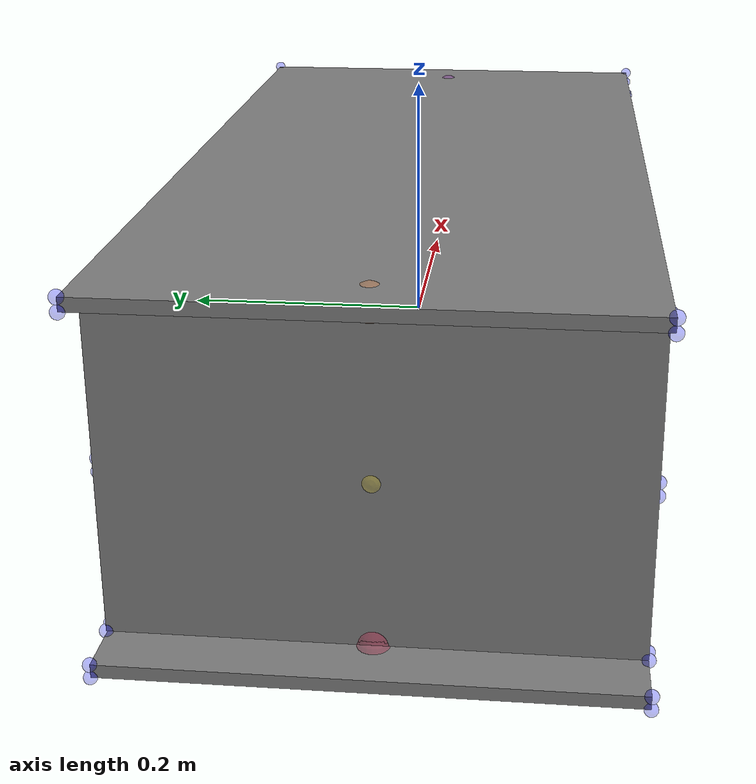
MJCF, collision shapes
<mujoco model="tvunit_0406">
  <custom>
    <numeric data="-0.384165 0.272905 0.00497 0.999971 0.0 0.0 -0.007619" name="0_part0_initpos" />
    <numeric data="-0.33085 -0.206251 0.00497 0.99999 -0.0 0.0 -0.004369" name="1_part1_initpos" />
    <numeric data="0.554654 -0.223251 0.005073 0.707103 -0.002217 0.707103 0.002217" name="2_part2_initpos" />
    <numeric data="0.21867 -0.208788 0.00497 0.707105 0.001443 0.707105 -0.001443" name="3_part3_initpos" />
    <numeric data="0.47408 0.258903 0.00497 -0.0 -0.999894 0.014558 -0.0" name="4_part4_initpos" />
  </custom>
  <asset>
    <mesh file="tvunit_0406/botplane.stl" name="0_part0" scale="0.001 0.001 0.001" />
    <mesh file="tvunit_0406/midplane.stl" name="1_part1" scale="0.001 0.001 0.001" />
    <mesh file="tvunit_0406/sideplane1.stl" name="2_part2" scale="0.001 0.001 0.001" />
    <mesh file="tvunit_0406/sideplane2.stl" name="3_part3" scale="0.001 0.001 0.001" />
    <mesh file="tvunit_0406/topplane.stl" name="4_part4" scale="0.001 0.001 0.001" />
    <texture file="../textures/light-wood.png" name="tex-light-wood" type="2d" />
    <material name="pencil-wood" reflectance="0.5" texrepeat="20 20" texture="tex-light-wood" texuniform="true" />
  </asset>
  <equality>
    <weld active="false" body1="0_part0" body2="2_part2" solimp="1 1 0.5" solref="0.01 0.3" />
    <weld active="false" body1="0_part0" body2="3_part3" solimp="1 1 0.5" solref="0.01 0.3" />
    <weld active="false" body1="1_part1" body2="2_part2" solimp="1 1 0.5" solref="0.01 0.3" />
    <weld active="false" body1="1_part1" body2="3_part3" solimp="1 1 0.5" solref="0.01 0.3" />
    <weld active="false" body1="4_part4" body2="2_part2" solimp="1 1 0.5" solref="0.01 0.3" />
    <weld active="false" body1="4_part4" body2="3_part3" solimp="1 1 0.5" solref="0.01 0.3" />
  </equality>
  <worldbody>
    <body name="0_part0" pos="0.0 0.0 -0.132">
      <geom conaffinity="0" contype="0" density="0" material="pencil-wood" mesh="0_part0" name="0_part0_geom" pos="0 0 0" rgba="0.82 0.71 0.55 1" solref="0.001 1" type="mesh" />
      <geom density="100" name="noviz_collision_0_part0_geom" pos="0 0 0" size="0.38 0.19 0.005" solref="0.001 1" type="box" />
      <site name="0_part0_top_site" pos="0.0 0.0 0.005" rgba="0 0 1 0" size="0.005" />
      <site name="0_part0_bottom_site" pos="0.0 0.0 -0.005" rgba="0 0 1 0" size="0.005" />
      <site name="0_part0_horizontal_radius_site" pos="0.0 0.0 0.0" rgba="0 0 1 0" size="0.05" />
      <site name="0_part0-2_part2,0,conn_site" pos="-0.3375 0.0 0.005" rgba="0.9019 0.0980 0.2941 0.3" size="0.012" />
      <site name="0_part0-3_part3,0,conn_site" pos="0.3375 0.0 0.005" rgba="0.2352 0.7058 0.2941 0.3" size="0.012" />
      <site name="0_part0_corner_site1" pos="-0.38 -0.19 -0.005" rgba="0 0 1 0.3" size="0.005" />
      <site name="0_part0_corner_site2" pos="-0.38 0.19 -0.005" rgba="0 0 1 0.3" size="0.005" />
      <site name="0_part0_corner_site3" pos="-0.38 -0.19 0.005" rgba="0 0 1 0.3" size="0.005" />
      <site name="0_part0_corner_site4" pos="-0.38 0.19 0.005" rgba="0 0 1 0.3" size="0.005" />
      <site name="0_part0_corner_site5" pos="0.38 -0.19 -0.005" rgba="0 0 1 0.3" size="0.005" />
      <site name="0_part0_corner_site6" pos="0.38 0.19 -0.005" rgba="0 0 1 0.3" size="0.005" />
      <site name="0_part0_corner_site7" pos="0.38 -0.19 0.005" rgba="0 0 1 0.3" size="0.005" />
      <site name="0_part0_corner_site8" pos="0.38 0.19 0.005" rgba="0 0 1 0.3" size="0.005" />
    </body>
    <body name="1_part1" pos="0.0 0.0 0.0">
      <geom conaffinity="0" contype="0" density="0" material="pencil-wood" mesh="1_part1" name="1_part1_geom" pos="0 0 0" rgba="0.82 0.71 0.55 1" solref="0.001 1" type="mesh" />
      <geom density="100" name="noviz_collision_1_part1_geom" pos="0 0 0" size="0.33 0.19 0.005" solref="0.001 1" type="box" />
      <site name="1_part1_top_site" pos="0.0 0.0 0.005" rgba="0 0 1 0" size="0.005" />
      <site name="1_part1_bottom_site" pos="0.0 0.0 -0.005" rgba="0 0 1 0" size="0.005" />
      <site name="1_part1_horizontal_radius_site" pos="0.0 0.0 0.0" rgba="0 0 1 0" size="0.05" />
      <site name="1_part1-2_part2,0,180,conn_site" pos="-0.331 0.0 0.0" quat="0.707 0 -0.707 0" rgba="1.0 0.8823 0.0980 0.3" size="0.012" />
      <site name="1_part1-3_part3,0,180,conn_site" pos="0.331 0.0 0.0" quat="0.707 0 -0.707 0" rgba="0.2627 0.3882 0.8470 0.3" size="0.012" />
      <site name="1_part1_corner_site1" pos="-0.33 -0.19 -0.005" rgba="0 0 1 0.3" size="0.005" />
      <site name="1_part1_corner_site2" pos="-0.33 0.19 -0.005" rgba="0 0 1 0.3" size="0.005" />
      <site name="1_part1_corner_site3" pos="-0.33 -0.19 0.005" rgba="0 0 1 0.3" size="0.005" />
      <site name="1_part1_corner_site4" pos="-0.33 0.19 0.005" rgba="0 0 1 0.3" size="0.005" />
      <site name="1_part1_corner_site5" pos="0.33 -0.19 -0.005" rgba="0 0 1 0.3" size="0.005" />
      <site name="1_part1_corner_site6" pos="0.33 0.19 -0.005" rgba="0 0 1 0.3" size="0.005" />
      <site name="1_part1_corner_site7" pos="0.33 -0.19 0.005" rgba="0 0 1 0.3" size="0.005" />
      <site name="1_part1_corner_site8" pos="0.33 0.19 0.005" rgba="0 0 1 0.3" size="0.005" />
    </body>
    <body name="2_part2" pos="-0.336 0.0 0.0">
      <geom conaffinity="0" contype="0" density="0" material="pencil-wood" mesh="2_part2" name="2_part2_geom" pos="0 0 0" rgba="0.82 0.71 0.55 1" solref="0.001 1" type="mesh" />
      <geom density="100" name="noviz_collision_2_part2_geom" pos="0 0 0" size="0.005  0.19  0.125" solref="0.001 1" type="box" />
      <site name="2_part2_top_site" pos="0.0 0.0 0.13" rgba="0 0 1 0" size="0.005" />
      <site name="2_part2_bottom_site" pos="0.0 0.0 -0.13" rgba="0 0 1 0" size="0.005" />
      <site name="2_part2_horizontal_radius_site" pos="0.0 0.0 0.0" rgba="0 0 1 0" size="0.05" />
      <site name="2_part2-4_part4,0,conn_site" pos="0.0 0.0 0.125" rgba="0.9607 0.5098 0.1921 0.3" size="0.012" />
      <site name="2_part2-1_part1,0,180,conn_site" pos="0.006 0.0 0.0" quat="0.707 0 -0.707 0" rgba="1.0 0.8823 0.0980 0.3" size="0.012" />
      <site name="2_part2-0_part0,0,conn_site" pos="0.0 0.0 -0.125" rgba="0.9019 0.0980 0.2941 0.3" size="0.012" />
      <site name="2_part2_corner_site1" pos="0.005 0.19 -0.125" rgba="0 0 1 0.3" size="0.005" />
      <site name="2_part2_corner_site2" pos="0.005 -0.19 -0.125" rgba="0 0 1 0.3" size="0.005" />
      <site name="2_part2_corner_site3" pos="0.005 0.19 0.125" rgba="0 0 1 0.3" size="0.005" />
      <site name="2_part2_corner_site4" pos="0.005 -0.19 0.125" rgba="0 0 1 0.3" size="0.005" />
      <site name="2_part2_corner_site5" pos="-0.005 0.19 -0.125" rgba="0 0 1 0.3" size="0.005" />
      <site name="2_part2_corner_site6" pos="-0.005 -0.19 -0.125" rgba="0 0 1 0.3" size="0.005" />
      <site name="2_part2_corner_site7" pos="-0.005 0.19 0.125" rgba="0 0 1 0.3" size="0.005" />
      <site name="2_part2_corner_site8" pos="-0.005 -0.19 0.125" rgba="0 0 1 0.3" size="0.005" />
    </body>
    <body name="3_part3" pos="0.3372 0.0 0.0">
      <geom conaffinity="0" contype="0" density="0" material="pencil-wood" mesh="3_part3" name="3_part3_geom" pos="0 0 0" rgba="0.82 0.71 0.55 1" solref="0.001 1" type="mesh" />
      <geom density="100" name="noviz_collision_3_part3_geom" pos="0 0 0" size="0.005  0.19  0.125" solref="0.001 1" type="box" />
      <site name="3_part3_top_site" pos="0.0 0.0 0.13" rgba="0 0 1 0" size="0.005" />
      <site name="3_part3_bottom_site" pos="0.0 0.0 -0.13" rgba="0 0 1 0" size="0.005" />
      <site name="3_part3_horizontal_radius_site" pos="0.0 0.0 0.0" rgba="0 0 1 0" size="0.05" />
      <site name="3_part3-4_part4,0,conn_site" pos="0.0 0.0 0.125" rgba="0.5686 0.1176 0.7058 0.3" size="0.012" />
      <site name="3_part3-1_part1,0,180,conn_site" pos="-0.006 0.0 0.0" quat="0.707 0 -0.707 0" rgba="0.2627 0.3882 0.8470 0.3" size="0.012" />
      <site name="3_part3-0_part0,0,conn_site" pos="0.0 0.0 -0.125" rgba="0.2352 0.7058 0.2941 0.3" size="0.012" />
      <site name="3_part3_corner_site1" pos="0.005 0.19 -0.125" rgba="0 0 1 0.3" size="0.005" />
      <site name="3_part3_corner_site2" pos="0.005 -0.19 -0.125" rgba="0 0 1 0.3" size="0.005" />
      <site name="3_part3_corner_site3" pos="0.005 0.19 0.125" rgba="0 0 1 0.3" size="0.005" />
      <site name="3_part3_corner_site4" pos="0.005 -0.19 0.125" rgba="0 0 1 0.3" size="0.005" />
      <site name="3_part3_corner_site5" pos="-0.005 0.19 -0.125" rgba="0 0 1 0.3" size="0.005" />
      <site name="3_part3_corner_site6" pos="-0.005 -0.19 -0.125" rgba="0 0 1 0.3" size="0.005" />
      <site name="3_part3_corner_site7" pos="-0.005 0.19 0.125" rgba="0 0 1 0.3" size="0.005" />
      <site name="3_part3_corner_site8" pos="-0.005 -0.19 0.125" rgba="0 0 1 0.3" size="0.005" />
    </body>
    <body name="4_part4" pos="0.0 0.0 0.1348">
      <geom conaffinity="0" contype="0" density="0" material="pencil-wood" mesh="4_part4" name="4_part4_geom" pos="0 0 0" rgba="0.82 0.71 0.55 1" solref="0.001 1" type="mesh" />
      <geom density="100" name="noviz_collision_4_part4_geom" pos="0 0 0" size="0.38  0.19  0.005 " solref="0.001 1" type="box" />
      <site name="4_part4_top_site" pos="0.0 0.0 0.005" rgba="0 0 1 0" size="0.005" />
      <site name="4_part4_bottom_site" pos="0.0 0.0 -0.005" rgba="0 0 1 0" size="0.005" />
      <site name="4_part4_horizontal_radius_site" pos="0.0 0.0 0.0" rgba="0 0 1 0" size="0.05" />
      <site name="4_part4-2_part2,0,conn_site" pos="-0.3375 0.0 -0.005" rgba="0.9607 0.5098 0.1921 0.3" size="0.012" />
      <site name="4_part4-3_part3,0,conn_site" pos="0.3375 0.0 -0.005" rgba="0.5686 0.1176 0.7058 0.3" size="0.012" />
      <site name="4_part4_corner_site1" pos="-0.38 -0.19 -0.005" rgba="0 0 1 0.3" size="0.005" />
      <site name="4_part4_corner_site2" pos="-0.38 0.19 -0.005" rgba="0 0 1 0.3" size="0.005" />
      <site name="4_part4_corner_site3" pos="-0.38 -0.19 0.005" rgba="0 0 1 0.3" size="0.005" />
      <site name="4_part4_corner_site4" pos="-0.38 0.19 0.005" rgba="0 0 1 0.3" size="0.005" />
      <site name="4_part4_corner_site5" pos="0.38 -0.19 -0.005" rgba="0 0 1 0.3" size="0.005" />
      <site name="4_part4_corner_site6" pos="0.38 0.19 -0.005" rgba="0 0 1 0.3" size="0.005" />
      <site name="4_part4_corner_site7" pos="0.38 -0.19 0.005" rgba="0 0 1 0.3" size="0.005" />
      <site name="4_part4_corner_site8" pos="0.38 0.19 0.005" rgba="0 0 1 0.3" size="0.005" />
    </body>
  </worldbody>
  <actuator />
  <sensor />
  <contact />
  <default />
</mujoco>
